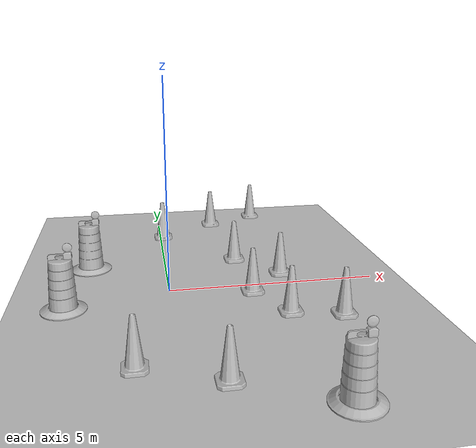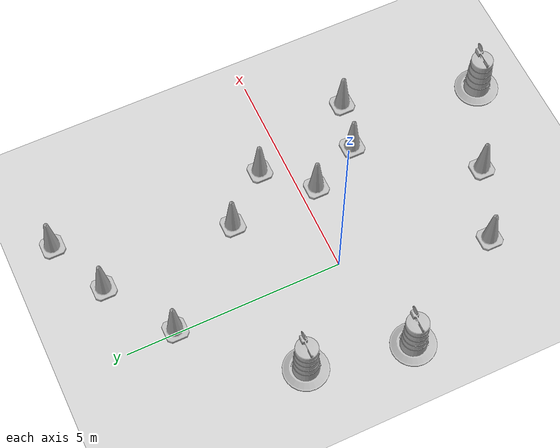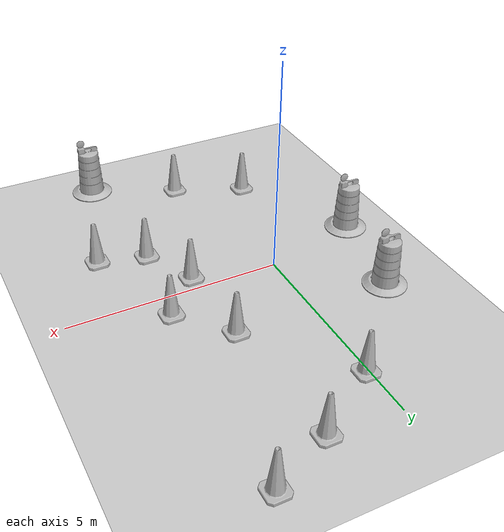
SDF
<sdf version="1.7">
 <world name="default">
  <light name="sun" type="directional">
   <pose>0 0 10 0 -0 0</pose>
   <diffuse>0.8 0.8 0.8 1</diffuse>
   <specular>0.2 0.2 0.2 1</specular>
   <attenuation>
    <range>1000</range>
    <constant>0.9</constant>
    <linear>0.01</linear>
    <quadratic>0.001</quadratic>
   </attenuation>
   <direction>-0.5 0.1 -0.9</direction>
   <spot><inner_angle>0</inner_angle><outer_angle>0</outer_angle><falloff>0</falloff></spot>
  </light>
  <model name="ground_plane">
   <static>1</static>
   <link name="link">
    <collision name="collision">
     <geometry><plane><normal>0 0 1</normal><size>100 100</size></plane></geometry>
     <surface>
      <contact><collide_bitmask>65535</collide_bitmask></contact>
      <friction><ode><mu>100</mu><mu2>50</mu2></ode></friction>
     </surface>
    </collision>
    <visual name="visual">
     <cast_shadows>0</cast_shadows>
     <geometry><plane><normal>0 0 1</normal><size>100 100</size></plane></geometry>
     <material>
      <script><uri>file://media/materials/scripts/gazebo.material</uri><name>Gazebo/Grey</name></script>
     </material>
    </visual>
   </link>
  </model>
  <gravity>0 0 -9.8</gravity>
  <magnetic_field>6e-06 2.3e-05 -4.2e-05</magnetic_field>
  <atmosphere type="adiabatic"/>
  <physics type="ode">
   <max_step_size>0.001</max_step_size>
   <real_time_factor>1</real_time_factor>
   <real_time_update_rate>1000</real_time_update_rate>
  </physics>
  <scene><ambient>0.4 0.4 0.4 1</ambient><background>0.7 0.7 0.7 1</background><shadows>1</shadows></scene>
  <spherical_coordinates>
   <surface_model>EARTH_WGS84</surface_model>
   <latitude_deg>0</latitude_deg>
   <longitude_deg>0</longitude_deg>
   <elevation>0</elevation>
   <heading_deg>0</heading_deg>
  </spherical_coordinates>
  <model name="Construction Barrel">
   <link name="link">
    <inertial>
     <pose>0 0 0.4 0 -0 0</pose>
     <mass>500</mass>
     <inertia><ixx>51.2096</ixx><iyy>51.2096</iyy><izz>25</izz><ixy>0</ixy><ixz>0</ixz><iyz>0</iyz></inertia>
    </inertial>
    <collision name="collision">
     <geometry><mesh><uri>model://construction_barrel/meshes/construction_barrel.dae</uri></mesh></geometry>
    </collision>
    <visual name="visual">
     <geometry><mesh><uri>model://construction_barrel/meshes/construction_barrel.dae</uri></mesh></geometry>
    </visual>
   </link>
   <pose>-1.88881 1.70207 -2e-06 -0 7e-06 -2.2e-05</pose>
  </model>
  <model name="Construction Barrel_0">
   <link name="link">
    <inertial>
     <pose>0 0 0.4 0 -0 0</pose>
     <mass>500</mass>
     <inertia><ixx>51.2096</ixx><iyy>51.2096</iyy><izz>25</izz><ixy>0</ixy><ixz>0</ixz><iyz>0</iyz></inertia>
    </inertial>
    <collision name="collision">
     <geometry><mesh><uri>model://construction_barrel/meshes/construction_barrel.dae</uri></mesh></geometry>
    </collision>
    <visual name="visual">
     <geometry><mesh><uri>model://construction_barrel/meshes/construction_barrel.dae</uri></mesh></geometry>
    </visual>
   </link>
   <pose>-2.3501 -0.609265 -2e-06 0 7e-06 -2.1e-05</pose>
  </model>
  <model name="Construction Cone">
   <link name="link">
    <collision name="collision">
     <geometry>
      <mesh><scale>10 10 10</scale><uri>model://construction_cone/meshes/construction_cone.dae</uri></mesh>
     </geometry>
    </collision>
    <visual name="visual">
     <geometry>
      <mesh><scale>10 10 10</scale><uri>model://construction_cone/meshes/construction_cone.dae</uri></mesh>
     </geometry>
    </visual>
    <inertial>
     <inertia><ixx>1</ixx><ixy>0</ixy><ixz>0</ixz><iyy>1</iyy><iyz>0</iyz><izz>1</izz></inertia>
     <mass>1</mass>
    </inertial>
   </link>
   <pose>-0.839121 -3.2921 -0 0 -1e-06 0</pose>
  </model>
  <model name="Construction Cone_0">
   <link name="link">
    <collision name="collision">
     <geometry>
      <mesh><scale>10 10 10</scale><uri>model://construction_cone/meshes/construction_cone.dae</uri></mesh>
     </geometry>
    </collision>
    <visual name="visual">
     <geometry>
      <mesh><scale>10 10 10</scale><uri>model://construction_cone/meshes/construction_cone.dae</uri></mesh>
     </geometry>
    </visual>
    <inertial>
     <inertia><ixx>1</ixx><ixy>0</ixy><ixz>0</ixz><iyy>1</iyy><iyz>0</iyz><izz>1</izz></inertia>
     <mass>1</mass>
    </inertial>
   </link>
   <pose>0.783945 -3.98459 0 -0 -0 -0</pose>
  </model>
  <model name="Construction Cone_1">
   <link name="link">
    <collision name="collision">
     <geometry>
      <mesh><scale>10 10 10</scale><uri>model://construction_cone/meshes/construction_cone.dae</uri></mesh>
     </geometry>
    </collision>
    <visual name="visual">
     <geometry>
      <mesh><scale>10 10 10</scale><uri>model://construction_cone/meshes/construction_cone.dae</uri></mesh>
     </geometry>
    </visual>
    <inertial>
     <inertia><ixx>1</ixx><ixy>0</ixy><ixz>0</ixz><iyy>1</iyy><iyz>0</iyz><izz>1</izz></inertia>
     <mass>1</mass>
    </inertial>
   </link>
   <pose>2.53303 -1.57406 -0 0 -0 0</pose>
  </model>
  <model name="Construction Cone_2">
   <link name="link">
    <collision name="collision">
     <geometry>
      <mesh><scale>10 10 10</scale><uri>model://construction_cone/meshes/construction_cone.dae</uri></mesh>
     </geometry>
    </collision>
    <visual name="visual">
     <geometry>
      <mesh><scale>10 10 10</scale><uri>model://construction_cone/meshes/construction_cone.dae</uri></mesh>
     </geometry>
    </visual>
    <inertial>
     <inertia><ixx>1</ixx><ixy>0</ixy><ixz>0</ixz><iyy>1</iyy><iyz>0</iyz><izz>1</izz></inertia>
     <mass>1</mass>
    </inertial>
   </link>
   <pose>1.92839 -0.376841 -0 0 -1e-06 0</pose>
  </model>
  <model name="Construction Cone_3">
   <link name="link">
    <collision name="collision">
     <geometry>
      <mesh><scale>10 10 10</scale><uri>model://construction_cone/meshes/construction_cone.dae</uri></mesh>
     </geometry>
    </collision>
    <visual name="visual">
     <geometry>
      <mesh><scale>10 10 10</scale><uri>model://construction_cone/meshes/construction_cone.dae</uri></mesh>
     </geometry>
    </visual>
    <inertial>
     <inertia><ixx>1</ixx><ixy>0</ixy><ixz>0</ixz><iyy>1</iyy><iyz>0</iyz><izz>1</izz></inertia>
     <mass>1</mass>
    </inertial>
   </link>
   <pose>2.83292 0.605721 -0 0 -0 0</pose>
  </model>
  <model name="Construction Cone_4">
   <link name="link">
    <collision name="collision">
     <geometry>
      <mesh><scale>10 10 10</scale><uri>model://construction_cone/meshes/construction_cone.dae</uri></mesh>
     </geometry>
    </collision>
    <visual name="visual">
     <geometry>
      <mesh><scale>10 10 10</scale><uri>model://construction_cone/meshes/construction_cone.dae</uri></mesh>
     </geometry>
    </visual>
    <inertial>
     <inertia><ixx>1</ixx><ixy>0</ixy><ixz>0</ixz><iyy>1</iyy><iyz>0</iyz><izz>1</izz></inertia>
     <mass>1</mass>
    </inertial>
   </link>
   <pose>1.8462 1.71495 -0 0 -0 0</pose>
  </model>
  <model name="Construction Cone_5">
   <link name="link">
    <collision name="collision">
     <geometry>
      <mesh><scale>10 10 10</scale><uri>model://construction_cone/meshes/construction_cone.dae</uri></mesh>
     </geometry>
    </collision>
    <visual name="visual">
     <geometry>
      <mesh><scale>10 10 10</scale><uri>model://construction_cone/meshes/construction_cone.dae</uri></mesh>
     </geometry>
    </visual>
    <inertial>
     <inertia><ixx>1</ixx><ixy>0</ixy><ixz>0</ixz><iyy>1</iyy><iyz>0</iyz><izz>1</izz></inertia>
     <mass>1</mass>
    </inertial>
   </link>
   <pose>0.075455 3.85581 -0 0 -0 0</pose>
  </model>
  <model name="Construction Cone_6">
   <link name="link">
    <collision name="collision">
     <geometry>
      <mesh><scale>10 10 10</scale><uri>model://construction_cone/meshes/construction_cone.dae</uri></mesh>
     </geometry>
    </collision>
    <visual name="visual">
     <geometry>
      <mesh><scale>10 10 10</scale><uri>model://construction_cone/meshes/construction_cone.dae</uri></mesh>
     </geometry>
    </visual>
    <inertial>
     <inertia><ixx>1</ixx><ixy>0</ixy><ixz>0</ixz><iyy>1</iyy><iyz>0</iyz><izz>1</izz></inertia>
     <mass>1</mass>
    </inertial>
   </link>
   <pose>1.62645 4.88002 -0 0 -1e-06 0</pose>
  </model>
  <model name="Construction Cone_7">
   <link name="link">
    <collision name="collision">
     <geometry>
      <mesh><scale>10 10 10</scale><uri>model://construction_cone/meshes/construction_cone.dae</uri></mesh>
     </geometry>
    </collision>
    <visual name="visual">
     <geometry>
      <mesh><scale>10 10 10</scale><uri>model://construction_cone/meshes/construction_cone.dae</uri></mesh>
     </geometry>
    </visual>
    <inertial>
     <inertia><ixx>1</ixx><ixy>0</ixy><ixz>0</ixz><iyy>1</iyy><iyz>0</iyz><izz>1</izz></inertia>
     <mass>1</mass>
    </inertial>
   </link>
   <pose>3.03849 5.53361 -0 0 -1e-06 0</pose>
  </model>
  <model name="Construction Cone_8">
   <link name="link">
    <collision name="collision">
     <geometry>
      <mesh><scale>10 10 10</scale><uri>model://construction_cone/meshes/construction_cone.dae</uri></mesh>
     </geometry>
    </collision>
    <visual name="visual">
     <geometry>
      <mesh><scale>10 10 10</scale><uri>model://construction_cone/meshes/construction_cone.dae</uri></mesh>
     </geometry>
    </visual>
    <inertial>
     <inertia><ixx>1</ixx><ixy>0</ixy><ixz>0</ixz><iyy>1</iyy><iyz>0</iyz><izz>1</izz></inertia>
     <mass>1</mass>
    </inertial>
   </link>
   <pose>3.64658 -1.86413 0 -0 -0 -0</pose>
  </model>
  <model name="Construction Barrel_1">
   <link name="link">
    <inertial>
     <pose>0 0 0.4 0 -0 0</pose>
     <mass>500</mass>
     <inertia><ixx>51.2096</ixx><iyy>51.2096</iyy><izz>25</izz><ixy>0</ixy><ixz>0</ixz><iyz>0</iyz></inertia>
    </inertial>
    <collision name="collision">
     <geometry><mesh><uri>model://construction_barrel/meshes/construction_barrel.dae</uri></mesh></geometry>
    </collision>
    <visual name="visual">
     <geometry><mesh><uri>model://construction_barrel/meshes/construction_barrel.dae</uri></mesh></geometry>
    </visual>
   </link>
   <pose>2.74966 -4.92073 -2e-06 4e-06 7e-06 -4e-06</pose>
  </model>
 </world>
</sdf>
